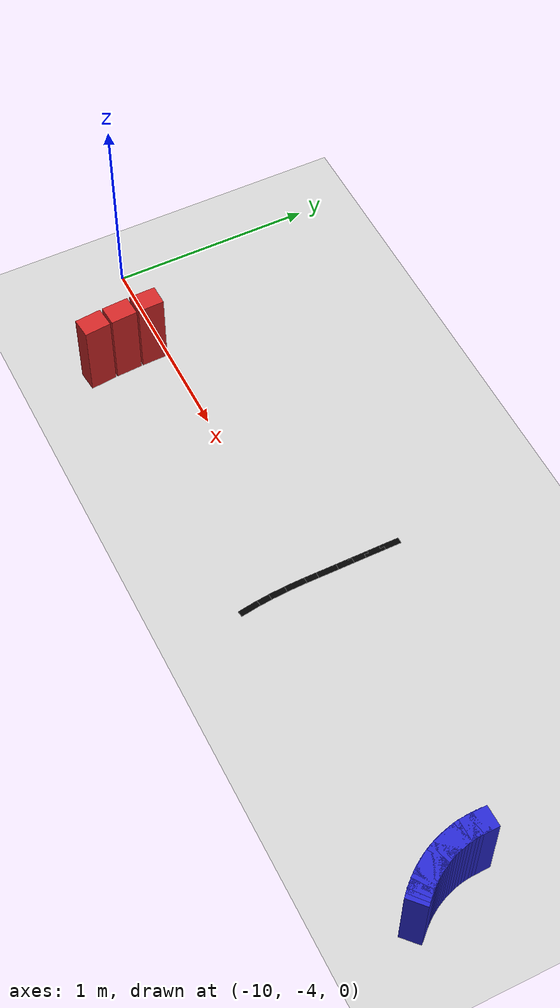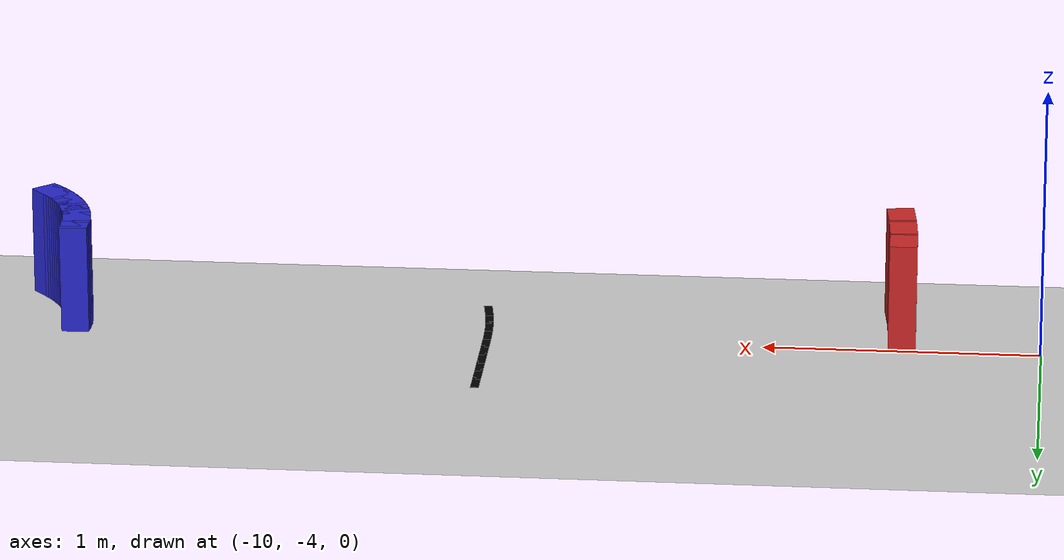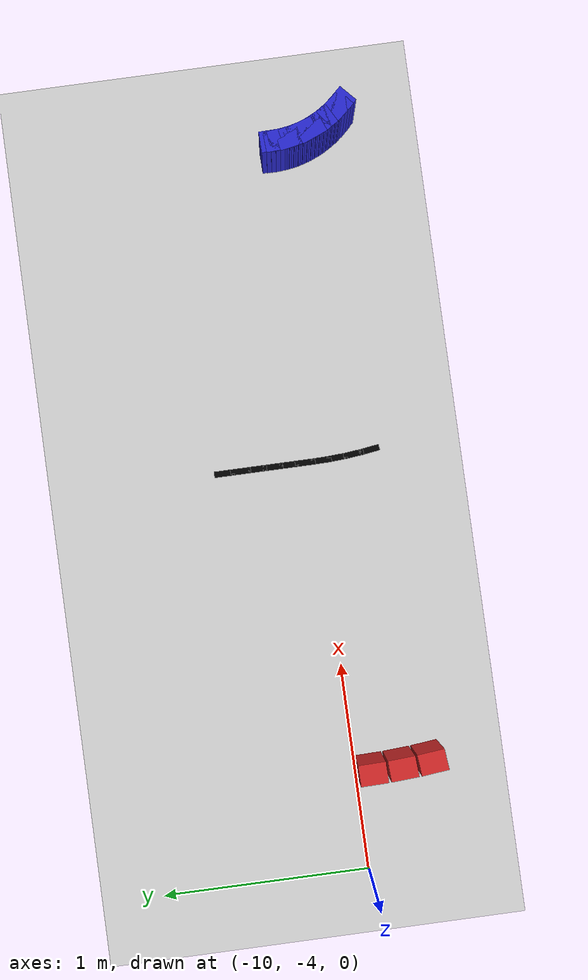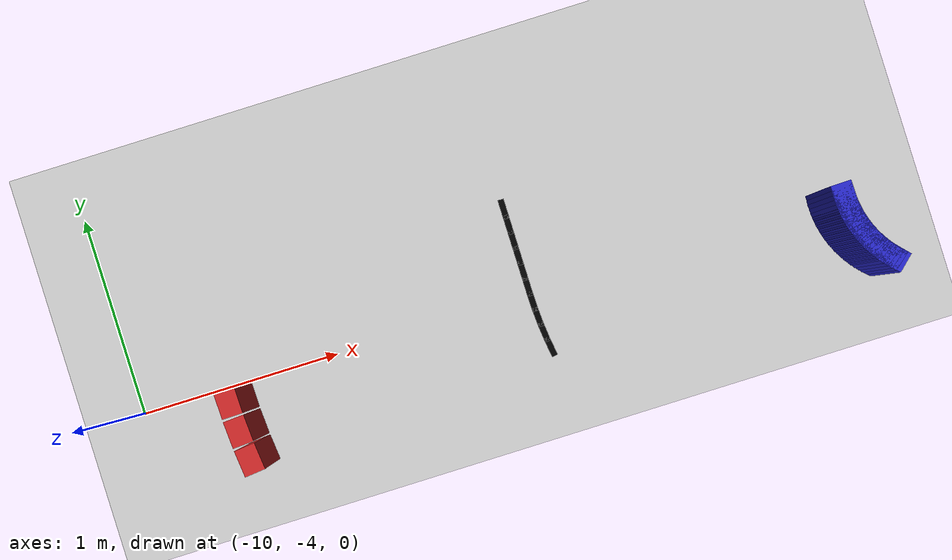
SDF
<sdf version="1.6">
 <world name="new_race_track">
  <include><uri>model://ground_plane</uri></include>
  <include><uri>model://sun</uri></include>
  <model name="race_track">
   <static>true</static>
   <link name="wall_link_1">
    <collision name="c"><geometry><box><size>0.1305 0.1 0.4</size></box></geometry></collision>
    <visual name="v">
     <geometry><box><size>0.1305 0.1 0.4</size></box></geometry>
     <material><ambient>0.15 0.15 0.8 1</ambient><diffuse>0.15 0.15 0.8 1</diffuse></material>
    </visual>
    <pose>-6.4995 -4.0101 0.200 0 0 -1.5507</pose>
   </link>
   <link name="wall_link_2">
    <collision name="c"><geometry><box><size>0.1305 0.1 0.4</size></box></geometry></collision>
    <visual name="v">
     <geometry><box><size>0.1305 0.1 0.4</size></box></geometry>
     <material><ambient>0.15 0.15 0.8 1</ambient><diffuse>0.15 0.15 0.8 1</diffuse></material>
    </visual>
    <pose>-6.4987 -4.0302 0.200 0 0 -1.5104</pose>
   </link>
   <link name="wall_link_3">
    <collision name="c"><geometry><box><size>0.1305 0.1 0.4</size></box></geometry></collision>
    <visual name="v">
     <geometry><box><size>0.1305 0.1 0.4</size></box></geometry>
     <material><ambient>0.15 0.15 0.8 1</ambient><diffuse>0.15 0.15 0.8 1</diffuse></material>
    </visual>
    <pose>-6.4971 -4.0502 0.200 0 0 -1.4701</pose>
   </link>
   <link name="wall_link_4">
    <collision name="c"><geometry><box><size>0.1305 0.1 0.4</size></box></geometry></collision>
    <visual name="v">
     <geometry><box><size>0.1305 0.1 0.4</size></box></geometry>
     <material><ambient>0.15 0.15 0.8 1</ambient><diffuse>0.15 0.15 0.8 1</diffuse></material>
    </visual>
    <pose>-6.4946 -4.0702 0.200 0 0 -1.4298</pose>
   </link>
   <link name="wall_link_5">
    <collision name="c"><geometry><box><size>0.1305 0.1 0.4</size></box></geometry></collision>
    <visual name="v">
     <geometry><box><size>0.1305 0.1 0.4</size></box></geometry>
     <material><ambient>0.15 0.15 0.8 1</ambient><diffuse>0.15 0.15 0.8 1</diffuse></material>
    </visual>
    <pose>-6.4914 -4.0901 0.200 0 0 -1.3896</pose>
   </link>
   <link name="wall_link_6">
    <collision name="c"><geometry><box><size>0.1305 0.1 0.4</size></box></geometry></collision>
    <visual name="v">
     <geometry><box><size>0.1305 0.1 0.4</size></box></geometry>
     <material><ambient>0.15 0.15 0.8 1</ambient><diffuse>0.15 0.15 0.8 1</diffuse></material>
    </visual>
    <pose>-6.4874 -4.1098 0.200 0 0 -1.3493</pose>
   </link>
   <link name="wall_link_7">
    <collision name="c"><geometry><box><size>0.1305 0.1 0.4</size></box></geometry></collision>
    <visual name="v">
     <geometry><box><size>0.1305 0.1 0.4</size></box></geometry>
     <material><ambient>0.15 0.15 0.8 1</ambient><diffuse>0.15 0.15 0.8 1</diffuse></material>
    </visual>
    <pose>-6.4826 -4.1293 0.200 0 0 -1.3090</pose>
   </link>
   <link name="wall_link_8">
    <collision name="c"><geometry><box><size>0.1305 0.1 0.4</size></box></geometry></collision>
    <visual name="v">
     <geometry><box><size>0.1305 0.1 0.4</size></box></geometry>
     <material><ambient>0.15 0.15 0.8 1</ambient><diffuse>0.15 0.15 0.8 1</diffuse></material>
    </visual>
    <pose>-6.4770 -4.1486 0.200 0 0 -1.2687</pose>
   </link>
   <link name="wall_link_9">
    <collision name="c"><geometry><box><size>0.1305 0.1 0.4</size></box></geometry></collision>
    <visual name="v">
     <geometry><box><size>0.1305 0.1 0.4</size></box></geometry>
     <material><ambient>0.15 0.15 0.8 1</ambient><diffuse>0.15 0.15 0.8 1</diffuse></material>
    </visual>
    <pose>-6.4706 -4.1677 0.200 0 0 -1.2284</pose>
   </link>
   <link name="wall_link_10">
    <collision name="c"><geometry><box><size>0.1305 0.1 0.4</size></box></geometry></collision>
    <visual name="v">
     <geometry><box><size>0.1305 0.1 0.4</size></box></geometry>
     <material><ambient>0.15 0.15 0.8 1</ambient><diffuse>0.15 0.15 0.8 1</diffuse></material>
    </visual>
    <pose>-6.4635 -4.1865 0.200 0 0 -1.1882</pose>
   </link>
   <link name="wall_link_11">
    <collision name="c"><geometry><box><size>0.1305 0.1 0.4</size></box></geometry></collision>
    <visual name="v">
     <geometry><box><size>0.1305 0.1 0.4</size></box></geometry>
     <material><ambient>0.15 0.15 0.8 1</ambient><diffuse>0.15 0.15 0.8 1</diffuse></material>
    </visual>
    <pose>-6.4556 -4.2050 0.200 0 0 -1.1479</pose>
   </link>
   <link name="wall_link_12">
    <collision name="c"><geometry><box><size>0.1305 0.1 0.4</size></box></geometry></collision>
    <visual name="v">
     <geometry><box><size>0.1305 0.1 0.4</size></box></geometry>
     <material><ambient>0.15 0.15 0.8 1</ambient><diffuse>0.15 0.15 0.8 1</diffuse></material>
    </visual>
    <pose>-6.4470 -4.2232 0.200 0 0 -1.1076</pose>
   </link>
   <link name="wall_link_13">
    <collision name="c"><geometry><box><size>0.1305 0.1 0.4</size></box></geometry></collision>
    <visual name="v">
     <geometry><box><size>0.1305 0.1 0.4</size></box></geometry>
     <material><ambient>0.15 0.15 0.8 1</ambient><diffuse>0.15 0.15 0.8 1</diffuse></material>
    </visual>
    <pose>-6.4376 -4.2410 0.200 0 0 -1.0673</pose>
   </link>
   <link name="wall_link_14">
    <collision name="c"><geometry><box><size>0.1305 0.1 0.4</size></box></geometry></collision>
    <visual name="v">
     <geometry><box><size>0.1305 0.1 0.4</size></box></geometry>
     <material><ambient>0.15 0.15 0.8 1</ambient><diffuse>0.15 0.15 0.8 1</diffuse></material>
    </visual>
    <pose>-6.4275 -4.2585 0.200 0 0 -1.0271</pose>
   </link>
   <link name="wall_link_15">
    <collision name="c"><geometry><box><size>0.1305 0.1 0.4</size></box></geometry></collision>
    <visual name="v">
     <geometry><box><size>0.1305 0.1 0.4</size></box></geometry>
     <material><ambient>0.15 0.15 0.8 1</ambient><diffuse>0.15 0.15 0.8 1</diffuse></material>
    </visual>
    <pose>-6.4168 -4.2755 0.200 0 0 -0.9868</pose>
   </link>
   <link name="wall_link_16">
    <collision name="c"><geometry><box><size>0.1305 0.1 0.4</size></box></geometry></collision>
    <visual name="v">
     <geometry><box><size>0.1305 0.1 0.4</size></box></geometry>
     <material><ambient>0.15 0.15 0.8 1</ambient><diffuse>0.15 0.15 0.8 1</diffuse></material>
    </visual>
    <pose>-6.4054 -4.2920 0.200 0 0 -0.9465</pose>
   </link>
   <link name="wall_link_17">
    <collision name="c"><geometry><box><size>0.1305 0.1 0.4</size></box></geometry></collision>
    <visual name="v">
     <geometry><box><size>0.1305 0.1 0.4</size></box></geometry>
     <material><ambient>0.15 0.15 0.8 1</ambient><diffuse>0.15 0.15 0.8 1</diffuse></material>
    </visual>
    <pose>-6.3933 -4.3081 0.200 0 0 -0.9062</pose>
   </link>
   <link name="wall_link_18">
    <collision name="c"><geometry><box><size>0.1305 0.1 0.4</size></box></geometry></collision>
    <visual name="v">
     <geometry><box><size>0.1305 0.1 0.4</size></box></geometry>
     <material><ambient>0.15 0.15 0.8 1</ambient><diffuse>0.15 0.15 0.8 1</diffuse></material>
    </visual>
    <pose>-6.3805 -4.3237 0.200 0 0 -0.8660</pose>
   </link>
   <link name="wall_link_19">
    <collision name="c"><geometry><box><size>0.1305 0.1 0.4</size></box></geometry></collision>
    <visual name="v">
     <geometry><box><size>0.1305 0.1 0.4</size></box></geometry>
     <material><ambient>0.15 0.15 0.8 1</ambient><diffuse>0.15 0.15 0.8 1</diffuse></material>
    </visual>
    <pose>-6.3672 -4.3388 0.200 0 0 -0.8257</pose>
   </link>
   <link name="wall_link_413">
    <collision name="c"><geometry><box><size>0.1305 0.1 0.4</size></box></geometry></collision>
    <visual name="v">
     <geometry><box><size>0.1305 0.1 0.4</size></box></geometry>
     <material><ambient>0.8 0.15 0.15 1</ambient><diffuse>0.8 0.15 0.15 1</diffuse></material>
    </visual>
    <pose>-9.4989 -4.0705 0.200 0 0 -1.5507</pose>
   </link>
   <link name="wall_link_414">
    <collision name="c"><geometry><box><size>0.1305 0.1 0.4</size></box></geometry></collision>
    <visual name="v">
     <geometry><box><size>0.1305 0.1 0.4</size></box></geometry>
     <material><ambient>0.8 0.15 0.15 1</ambient><diffuse>0.8 0.15 0.15 1</diffuse></material>
    </visual>
    <pose>-9.4932 -4.2113 0.200 0 0 -1.5104</pose>
   </link>
   <link name="wall_link_415">
    <collision name="c"><geometry><box><size>0.1305 0.1 0.4</size></box></geometry></collision>
    <visual name="v">
     <geometry><box><size>0.1305 0.1 0.4</size></box></geometry>
     <material><ambient>0.8 0.15 0.15 1</ambient><diffuse>0.8 0.15 0.15 1</diffuse></material>
    </visual>
    <pose>-9.4819 -4.3518 0.200 0 0 -1.4701</pose>
   </link>
   <link name="line_link_868">
    <visual name="v">
     <geometry><box><size>0.1000 0.03 0.002</size></box></geometry>
     <material><ambient>0 0 0 1</ambient><diffuse>0 0 0 1</diffuse></material>
    </visual>
    <pose>-8.0000 -3.5600 0.002 0 0 -1.5708</pose>
   </link>
   <link name="line_link_869">
    <visual name="v">
     <geometry><box><size>0.1000 0.03 0.002</size></box></geometry>
     <material><ambient>0 0 0 1</ambient><diffuse>0 0 0 1</diffuse></material>
    </visual>
    <pose>-8.0000 -3.6400 0.002 0 0 -1.5708</pose>
   </link>
   <link name="line_link_870">
    <visual name="v">
     <geometry><box><size>0.1000 0.03 0.002</size></box></geometry>
     <material><ambient>0 0 0 1</ambient><diffuse>0 0 0 1</diffuse></material>
    </visual>
    <pose>-8.0000 -3.7200 0.002 0 0 -1.5708</pose>
   </link>
   <link name="line_link_871">
    <visual name="v">
     <geometry><box><size>0.1000 0.03 0.002</size></box></geometry>
     <material><ambient>0 0 0 1</ambient><diffuse>0 0 0 1</diffuse></material>
    </visual>
    <pose>-8.0000 -3.8000 0.002 0 0 -1.5708</pose>
   </link>
   <link name="line_link_872">
    <visual name="v">
     <geometry><box><size>0.1000 0.03 0.002</size></box></geometry>
     <material><ambient>0 0 0 1</ambient><diffuse>0 0 0 1</diffuse></material>
    </visual>
    <pose>-8.0000 -3.8800 0.002 0 0 -1.5708</pose>
   </link>
   <link name="line_link_873">
    <visual name="v">
     <geometry><box><size>0.1000 0.03 0.002</size></box></geometry>
     <material><ambient>0 0 0 1</ambient><diffuse>0 0 0 1</diffuse></material>
    </visual>
    <pose>-8.0000 -3.9600 0.002 0 0 -1.5708</pose>
   </link>
   <link name="line_link_874">
    <visual name="v">
     <geometry><box><size>0.1005 0.03 0.002</size></box></geometry>
     <material><ambient>0 0 0 1</ambient><diffuse>0 0 0 1</diffuse></material>
    </visual>
    <pose>-7.9992 -4.0403 0.002 0 0 -1.5507</pose>
   </link>
   <link name="line_link_875">
    <visual name="v">
     <geometry><box><size>0.1005 0.03 0.002</size></box></geometry>
     <material><ambient>0 0 0 1</ambient><diffuse>0 0 0 1</diffuse></material>
    </visual>
    <pose>-7.9959 -4.1207 0.002 0 0 -1.5104</pose>
   </link>
   <link name="line_link_876">
    <visual name="v">
     <geometry><box><size>0.1005 0.03 0.002</size></box></geometry>
     <material><ambient>0 0 0 1</ambient><diffuse>0 0 0 1</diffuse></material>
    </visual>
    <pose>-7.9895 -4.2010 0.002 0 0 -1.4701</pose>
   </link>
   <link name="line_link_877">
    <visual name="v">
     <geometry><box><size>0.1005 0.03 0.002</size></box></geometry>
     <material><ambient>0 0 0 1</ambient><diffuse>0 0 0 1</diffuse></material>
    </visual>
    <pose>-7.9798 -4.2809 0.002 0 0 -1.4298</pose>
   </link>
  </model>
 </world>
</sdf>
